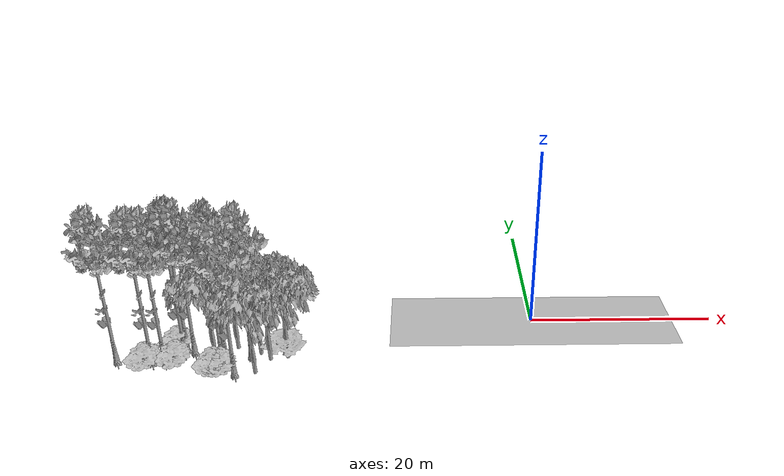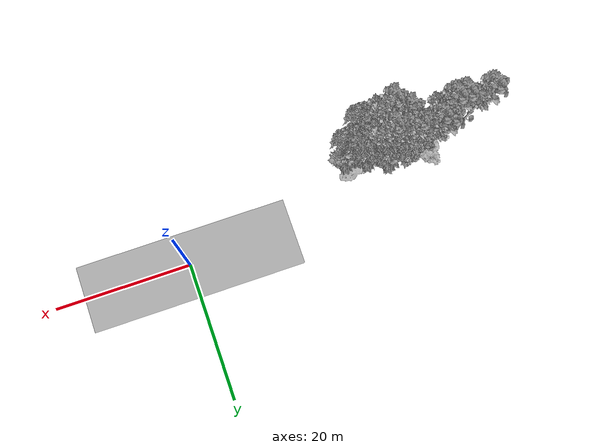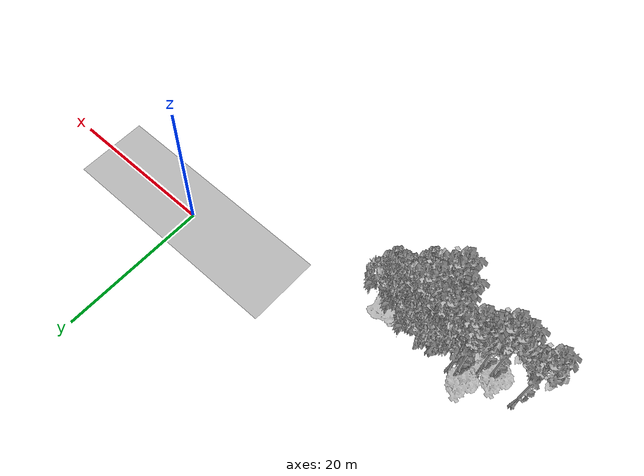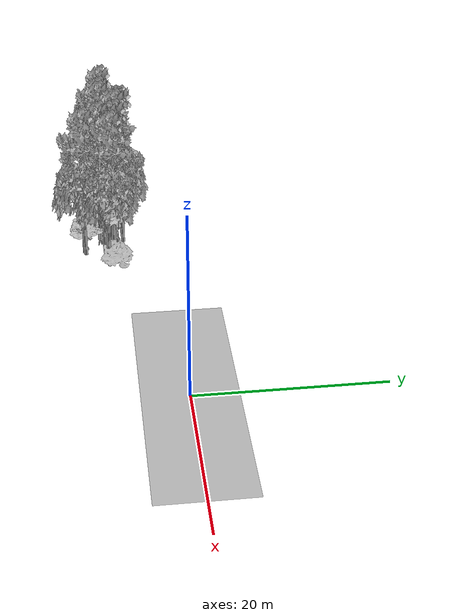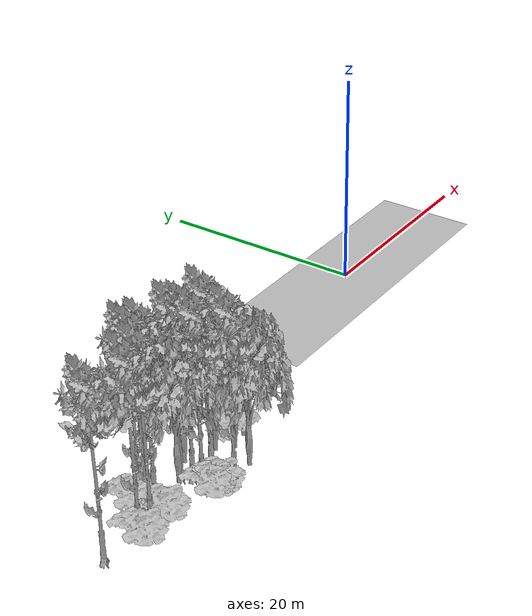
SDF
<sdf version="1.7">
 <world name="default">
  <model name="ground_plane">
   <static>1</static>
   <link name="link">
    <collision name="collision">
     <pose>-50 0 0 0 -0 0</pose>
     <geometry><plane><normal>0 0 1</normal><size>100 100</size></plane></geometry>
     <surface><contact><ode><min_depth>0.01</min_depth><max_vel>0</max_vel></ode></contact></surface>
    </collision>
    <visual name="grass">
     <cast_shadows>0</cast_shadows>
     <geometry>
      <mesh>
       <scale>0.5814285714285714 0.18142857142857144 0.1</scale>
       <uri>file://grass_plane/meshes/grass_plane.dae</uri>
      </mesh>
     </geometry>
    </visual>
   </link>
  </model>
  <model name="Tree 30">
   <static>1</static>
   <pose>-33.71917963935912 -8.957106925812333 0 1.57079 -0 0</pose>
   <link name="link">
    <collision name="collision">
     <geometry><mesh><scale>4 2.5 4</scale><uri>model://tree_1/meshes/tree_1.obj</uri></mesh></geometry>
    </collision>
    <visual name="visual">
     <geometry><mesh><scale>4 2.5 4</scale><uri>model://tree_1/meshes/tree_1.obj</uri></mesh></geometry>
    </visual>
   </link>
  </model>
  <model name="Tree 56">
   <static>1</static>
   <pose>-31.796855072408313 -4.972150601249167 0 1.57079 -0 0</pose>
   <link name="link">
    <collision name="collision">
     <geometry><mesh><scale>3.5 5 3.5</scale><uri>model://tree_2/meshes/tree_2.obj</uri></mesh></geometry>
    </collision>
    <visual name="visual">
     <geometry><mesh><scale>3.5 5 3.5</scale><uri>model://tree_2/meshes/tree_2.obj</uri></mesh></geometry>
    </visual>
   </link>
  </model>
  <model name="Tree 73">
   <static>1</static>
   <pose>-32.74072908074277 -6.53432232755906 0 1.57079 -0 0</pose>
   <link name="link">
    <collision name="collision">
     <geometry><mesh><scale>3.5 5 3.5</scale><uri>model://tree_9/meshes/tree_9.obj</uri></mesh></geometry>
    </collision>
    <visual name="visual">
     <geometry><mesh><scale>3.5 5 3.5</scale><uri>model://tree_9/meshes/tree_9.obj</uri></mesh></geometry>
    </visual>
   </link>
  </model>
  <model name="Tree 99">
   <static>1</static>
   <pose>-34.01319477505477 -6.118931116708264 0 1.57079 -0 0</pose>
   <link name="link">
    <collision name="collision">
     <geometry><mesh><scale>3.5 5 3.5</scale><uri>model://tree_2/meshes/tree_2.obj</uri></mesh></geometry>
    </collision>
    <visual name="visual">
     <geometry><mesh><scale>3.5 5 3.5</scale><uri>model://tree_2/meshes/tree_2.obj</uri></mesh></geometry>
    </visual>
   </link>
  </model>
  <model name="Tree 114">
   <static>1</static>
   <pose>-37.15963762568788 -4.89606560090624 0 1.57079 -0 0</pose>
   <link name="link">
    <collision name="collision">
     <geometry><mesh><scale>3.5 5 3.5</scale><uri>model://tree_9/meshes/tree_9.obj</uri></mesh></geometry>
    </collision>
    <visual name="visual">
     <geometry><mesh><scale>3.5 5 3.5</scale><uri>model://tree_9/meshes/tree_9.obj</uri></mesh></geometry>
    </visual>
   </link>
  </model>
  <model name="Tree 144">
   <static>1</static>
   <pose>-38.308843223316806 -4.921172586628536 0 1.57079 -0 0</pose>
   <link name="link">
    <collision name="collision">
     <geometry><mesh><scale>4 2.5 4</scale><uri>model://tree_1/meshes/tree_1.obj</uri></mesh></geometry>
    </collision>
    <visual name="visual">
     <geometry><mesh><scale>4 2.5 4</scale><uri>model://tree_1/meshes/tree_1.obj</uri></mesh></geometry>
    </visual>
   </link>
  </model>
  <model name="Tree 159">
   <static>1</static>
   <pose>-40.209761482661094 -7.274944787642812 0 1.57079 -0 0</pose>
   <link name="link">
    <collision name="collision">
     <geometry><mesh><scale>3.5 5 3.5</scale><uri>model://tree_9/meshes/tree_9.obj</uri></mesh></geometry>
    </collision>
    <visual name="visual">
     <geometry><mesh><scale>3.5 5 3.5</scale><uri>model://tree_9/meshes/tree_9.obj</uri></mesh></geometry>
    </visual>
   </link>
  </model>
  <model name="Tree 166">
   <static>1</static>
   <pose>-31.274226039108946 -9.45992884808643 0 1.57079 -0 0</pose>
   <link name="link">
    <collision name="collision">
     <geometry><mesh><scale>3.5 5 3.5</scale><uri>model://tree_9/meshes/tree_9.obj</uri></mesh></geometry>
    </collision>
    <visual name="visual">
     <geometry><mesh><scale>3.5 5 3.5</scale><uri>model://tree_9/meshes/tree_9.obj</uri></mesh></geometry>
    </visual>
   </link>
  </model>
  <model name="Tree 185">
   <static>1</static>
   <pose>-37.24785814747615 -5.593612240739816 0 1.57079 -0 0</pose>
   <link name="link">
    <collision name="collision">
     <geometry><mesh><scale>3.5 5 3.5</scale><uri>model://tree_9/meshes/tree_9.obj</uri></mesh></geometry>
    </collision>
    <visual name="visual">
     <geometry><mesh><scale>3.5 5 3.5</scale><uri>model://tree_9/meshes/tree_9.obj</uri></mesh></geometry>
    </visual>
   </link>
  </model>
  <model name="Tree 190">
   <static>1</static>
   <pose>-37.92364706979353 -7.6221848768703495 0 1.57079 -0 0</pose>
   <link name="link">
    <collision name="collision">
     <geometry><mesh><scale>4 2.5 4</scale><uri>model://tree_1/meshes/tree_1.obj</uri></mesh></geometry>
    </collision>
    <visual name="visual">
     <geometry><mesh><scale>4 2.5 4</scale><uri>model://tree_1/meshes/tree_1.obj</uri></mesh></geometry>
    </visual>
   </link>
  </model>
  <model name="Tree 203">
   <static>1</static>
   <pose>-29.2423647995355 -9.40509586223474 0 1.57079 -0 0</pose>
   <link name="link">
    <collision name="collision">
     <geometry><mesh><scale>3.5 5 3.5</scale><uri>model://tree_2/meshes/tree_2.obj</uri></mesh></geometry>
    </collision>
    <visual name="visual">
     <geometry><mesh><scale>3.5 5 3.5</scale><uri>model://tree_2/meshes/tree_2.obj</uri></mesh></geometry>
    </visual>
   </link>
  </model>
  <model name="Tree 206">
   <static>1</static>
   <pose>-30.088245045633876 -6.349926577266666 0 1.57079 -0 0</pose>
   <link name="link">
    <collision name="collision">
     <geometry><mesh><scale>3.5 5 3.5</scale><uri>model://tree_9/meshes/tree_9.obj</uri></mesh></geometry>
    </collision>
    <visual name="visual">
     <geometry><mesh><scale>3.5 5 3.5</scale><uri>model://tree_9/meshes/tree_9.obj</uri></mesh></geometry>
    </visual>
   </link>
  </model>
  <model name="Tree 239">
   <static>1</static>
   <pose>-32.97632217955678 -9.051590936516146 0 1.57079 -0 0</pose>
   <link name="link">
    <collision name="collision">
     <geometry><mesh><scale>4 2.5 4</scale><uri>model://tree_1/meshes/tree_1.obj</uri></mesh></geometry>
    </collision>
    <visual name="visual">
     <geometry><mesh><scale>4 2.5 4</scale><uri>model://tree_1/meshes/tree_1.obj</uri></mesh></geometry>
    </visual>
   </link>
  </model>
  <model name="Tree 268">
   <static>1</static>
   <pose>-40.8955167775664 -7.909926370828035 0 1.57079 -0 0</pose>
   <link name="link">
    <collision name="collision">
     <geometry><mesh><scale>4 2.5 4</scale><uri>model://tree_1/meshes/tree_1.obj</uri></mesh></geometry>
    </collision>
    <visual name="visual">
     <geometry><mesh><scale>4 2.5 4</scale><uri>model://tree_1/meshes/tree_1.obj</uri></mesh></geometry>
    </visual>
   </link>
  </model>
  <model name="Tree 315">
   <static>1</static>
   <pose>-33.17539507601917 -5.711039505232746 0 1.57079 -0 0</pose>
   <link name="link">
    <collision name="collision">
     <geometry><mesh><scale>3.5 5 3.5</scale><uri>model://tree_9/meshes/tree_9.obj</uri></mesh></geometry>
    </collision>
    <visual name="visual">
     <geometry><mesh><scale>3.5 5 3.5</scale><uri>model://tree_9/meshes/tree_9.obj</uri></mesh></geometry>
    </visual>
   </link>
  </model>
  <model name="Tree 334">
   <static>1</static>
   <pose>-29.20502972413324 -6.056638618760852 0 1.57079 -0 0</pose>
   <link name="link">
    <collision name="collision">
     <geometry><mesh><scale>3.5 5 3.5</scale><uri>model://tree_2/meshes/tree_2.obj</uri></mesh></geometry>
    </collision>
    <visual name="visual">
     <geometry><mesh><scale>3.5 5 3.5</scale><uri>model://tree_2/meshes/tree_2.obj</uri></mesh></geometry>
    </visual>
   </link>
  </model>
  <model name="Tree 337">
   <static>1</static>
   <pose>-26.315566738216777 -6.74582391349902 0 1.57079 -0 0</pose>
   <link name="link">
    <collision name="collision">
     <geometry><mesh><scale>3.5 5 3.5</scale><uri>model://tree_2/meshes/tree_2.obj</uri></mesh></geometry>
    </collision>
    <visual name="visual">
     <geometry><mesh><scale>3.5 5 3.5</scale><uri>model://tree_2/meshes/tree_2.obj</uri></mesh></geometry>
    </visual>
   </link>
  </model>
  <model name="Tree 388">
   <static>1</static>
   <pose>-28.055366575419566 -7.10802498869038 0 1.57079 -0 0</pose>
   <link name="link">
    <collision name="collision">
     <geometry><mesh><scale>3.5 5 3.5</scale><uri>model://tree_2/meshes/tree_2.obj</uri></mesh></geometry>
    </collision>
    <visual name="visual">
     <geometry><mesh><scale>3.5 5 3.5</scale><uri>model://tree_2/meshes/tree_2.obj</uri></mesh></geometry>
    </visual>
   </link>
  </model>
  <model name="Tree 414">
   <static>1</static>
   <pose>-38.86897862647339 -7.328499654076932 0 1.57079 -0 0</pose>
   <link name="link">
    <collision name="collision">
     <geometry><mesh><scale>3.5 5 3.5</scale><uri>model://tree_9/meshes/tree_9.obj</uri></mesh></geometry>
    </collision>
    <visual name="visual">
     <geometry><mesh><scale>3.5 5 3.5</scale><uri>model://tree_9/meshes/tree_9.obj</uri></mesh></geometry>
    </visual>
   </link>
  </model>
  <model name="Tree 427">
   <static>1</static>
   <pose>-26.697139302851422 -6.126362940581153 0 1.57079 -0 0</pose>
   <link name="link">
    <collision name="collision">
     <geometry><mesh><scale>3 2 3</scale><uri>model://tree_3/meshes/tree_3.obj</uri></mesh></geometry>
    </collision>
    <visual name="visual">
     <geometry><mesh><scale>3 2 3</scale><uri>model://tree_3/meshes/tree_3.obj</uri></mesh></geometry>
    </visual>
   </link>
  </model>
  <model name="Tree 432">
   <static>1</static>
   <pose>-32.865171893905135 -7.562372400177319 0 1.57079 -0 0</pose>
   <link name="link">
    <collision name="collision">
     <geometry><mesh><scale>3.5 5 3.5</scale><uri>model://tree_9/meshes/tree_9.obj</uri></mesh></geometry>
    </collision>
    <visual name="visual">
     <geometry><mesh><scale>3.5 5 3.5</scale><uri>model://tree_9/meshes/tree_9.obj</uri></mesh></geometry>
    </visual>
   </link>
  </model>
  <model name="Tree 440">
   <static>1</static>
   <pose>-43.8938292670263 -7.023241927060284 0 1.57079 -0 0</pose>
   <link name="link">
    <collision name="collision">
     <geometry><mesh><scale>3.5 5 3.5</scale><uri>model://tree_9/meshes/tree_9.obj</uri></mesh></geometry>
    </collision>
    <visual name="visual">
     <geometry><mesh><scale>3.5 5 3.5</scale><uri>model://tree_9/meshes/tree_9.obj</uri></mesh></geometry>
    </visual>
   </link>
  </model>
  <model name="Tree 457">
   <static>1</static>
   <pose>-36.193768114499775 -5.52080862205136 0 1.57079 -0 0</pose>
   <link name="link">
    <collision name="collision">
     <geometry><mesh><scale>3.5 5 3.5</scale><uri>model://tree_9/meshes/tree_9.obj</uri></mesh></geometry>
    </collision>
    <visual name="visual">
     <geometry><mesh><scale>3.5 5 3.5</scale><uri>model://tree_9/meshes/tree_9.obj</uri></mesh></geometry>
    </visual>
   </link>
  </model>
 </world>
</sdf>
